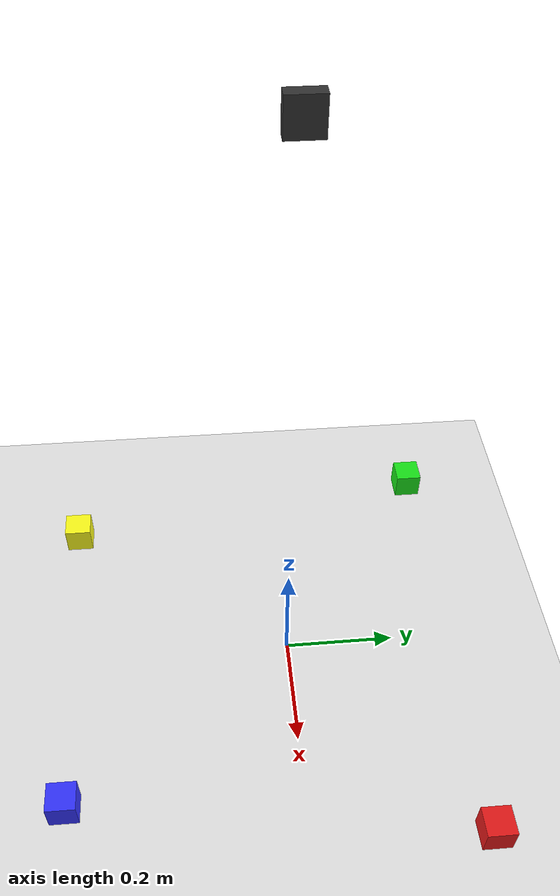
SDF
<sdf version="1.6">
 <world name="sentai_x3">
  <physics name="1ms" type="ignored">
   <max_step_size>0.001</max_step_size>
   <real_time_factor>1.0</real_time_factor>
  </physics>
  <plugin filename="gz-sim-physics-system" name="gz::sim::systems::Physics"/>
  <plugin filename="gz-sim-scene-broadcaster-system" name="gz::sim::systems::SceneBroadcaster"/>
  <plugin filename="gz-sim-user-commands-system" name="gz::sim::systems::UserCommands"/>
  <plugin filename="gz-sim-sensors-system" name="gz::sim::systems::Sensors">
   <render_engine>ogre2</render_engine>
  </plugin>
  <plugin filename="gz-sim-imu-system" name="gz::sim::systems::Imu"/>
  <light type="directional" name="sun">
   <pose>0 0 10 0 0 0</pose>
   <diffuse>0.9 0.9 0.9 1</diffuse>
   <specular>0.3 0.3 0.3 1</specular>
   <attenuation>
    <range>1000</range>
    <constant>0.9</constant>
    <linear>0.01</linear>
    <quadratic>0.001</quadratic>
   </attenuation>
   <direction>-0.3 0.2 -0.9</direction>
  </light>
  <model name="ground_plane">
   <static>true</static>
   <link name="link">
    <collision name="collision">
     <geometry><plane><normal>0 0 1</normal><size>4 4</size></plane></geometry>
    </collision>
    <visual name="visual">
     <geometry><plane><normal>0 0 1</normal><size>4 4</size></plane></geometry>
     <material>
      <diffuse>0.9 0.9 0.9 1</diffuse>
      <pbr><metal><albedo_map>materials/textures/checker.png</albedo_map></metal></pbr>
     </material>
    </visual>
   </link>
  </model>
  <model name="marker_red">
   <static>true</static>
   <pose>0.4 0.3 0.025 0 0 0</pose>
   <link name="l">
    <visual name="v">
     <geometry><box><size>0.05 0.05 0.05</size></box></geometry>
     <material><ambient>0.8 0.1 0.1 1</ambient><diffuse>0.9 0.1 0.1 1</diffuse></material>
    </visual>
   </link>
  </model>
  <model name="marker_green">
   <static>true</static>
   <pose>-0.4 0.3 0.025 0 0 0</pose>
   <link name="l">
    <visual name="v">
     <geometry><box><size>0.05 0.05 0.05</size></box></geometry>
     <material><ambient>0.1 0.7 0.1 1</ambient><diffuse>0.1 0.9 0.1 1</diffuse></material>
    </visual>
   </link>
  </model>
  <model name="marker_blue">
   <static>true</static>
   <pose>0.3 -0.4 0.025 0 0 0</pose>
   <link name="l">
    <visual name="v">
     <geometry><box><size>0.05 0.05 0.05</size></box></geometry>
     <material><ambient>0.1 0.1 0.8 1</ambient><diffuse>0.2 0.2 1.0 1</diffuse></material>
    </visual>
   </link>
  </model>
  <model name="marker_yellow">
   <static>true</static>
   <pose>-0.3 -0.4 0.025 0 0 0</pose>
   <link name="l">
    <visual name="v">
     <geometry><box><size>0.05 0.05 0.05</size></box></geometry>
     <material><ambient>0.9 0.9 0.1 1</ambient><diffuse>1.0 1.0 0.1 1</diffuse></material>
    </visual>
   </link>
  </model>
  <model name="downward_cam">
   <static>true</static>
   <pose>0 0 1.0 0 1.5707963 0</pose>
   <link name="link">
    <visual name="vis">
     <geometry><box><size>0.05 0.05 0.02</size></box></geometry>
     <material><ambient>0.1 0.1 0.1 1</ambient><diffuse>0.2 0.2 0.2 1</diffuse></material>
    </visual>
    <sensor name="cam" type="camera">
     <camera>
      <horizontal_fov>1.047</horizontal_fov>
      <image><width>640</width><height>480</height><format>R8G8B8</format></image>
      <clip><near>0.05</near><far>10</far></clip>
     </camera>
     <update_rate>30</update_rate>
     <topic>downward_cam/image</topic>
     <always_on>1</always_on>
    </sensor>
   </link>
  </model>
 </world>
</sdf>
